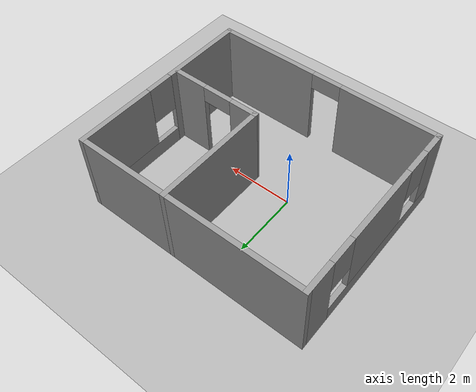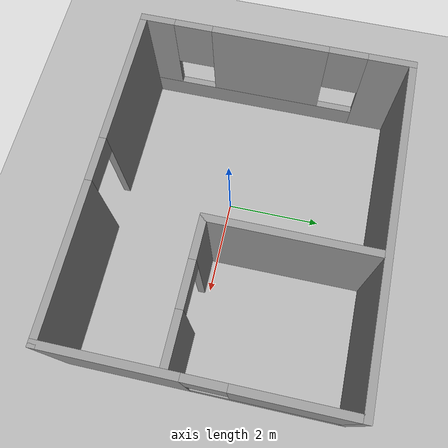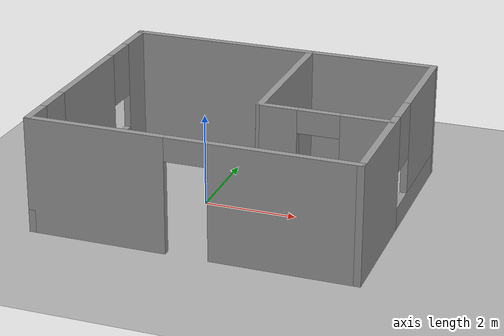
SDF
<sdf version="1.9">
 <world name="default">
  <gravity>0 0 -9.8</gravity>
  <magnetic_field>6e-06 2.3e-05 -4.2e-05</magnetic_field>
  <atmosphere type="adiabatic"/>
  <physics type="ode">
   <max_step_size>0.001</max_step_size>
   <real_time_factor>1</real_time_factor>
   <real_time_update_rate>1000</real_time_update_rate>
  </physics>
  <scene><ambient>0.4 0.4 0.4 1</ambient><background>0.7 0.7 0.7 1</background><shadows>true</shadows></scene>
  <model name="studio">
   <pose>0.625 0.380103 0 0 -0 0</pose>
   <link name="Wall_0">
    <pose>0 -2.8001 0 0 -0 0</pose>
    <visual name="Wall_0_Visual_0">
     <pose>-2.00541 0 1.25 0 -0 0</pose>
     <geometry><box><size>2.98917 0.15 2.5</size></box></geometry>
     <material>
      <script><uri>file://media/materials/scripts/gazebo.material</uri><name>Gazebo/Grey</name></script>
      <ambient>1 1 1 1</ambient>
     </material>
     <meta><layer>0</layer></meta>
    </visual>
    <collision name="Wall_0_Collision_0">
     <geometry><box><size>2.98917 0.15 2.5</size></box></geometry>
     <pose>-2.00541 0 1.25 0 -0 0</pose>
    </collision>
    <visual name="Wall_0_Visual_1">
     <pose>1.94459 0 1.25 0 -0 0</pose>
     <geometry><box><size>3.11083 0.15 2.5</size></box></geometry>
     <material>
      <script><uri>file://media/materials/scripts/gazebo.material</uri><name>Gazebo/Grey</name></script>
      <ambient>1 1 1 1</ambient>
     </material>
     <meta><layer>0</layer></meta>
    </visual>
    <collision name="Wall_0_Collision_1">
     <geometry><box><size>3.11083 0.15 2.5</size></box></geometry>
     <pose>1.94459 0 1.25 0 -0 0</pose>
    </collision>
    <visual name="Wall_0_Visual_2">
     <pose>-0.060828 0 2.25 0 -0 0</pose>
     <geometry><box><size>0.9 0.15 0.5</size></box></geometry>
     <material>
      <script><uri>file://media/materials/scripts/gazebo.material</uri><name>Gazebo/Grey</name></script>
      <ambient>1 1 1 1</ambient>
     </material>
     <meta><layer>0</layer></meta>
    </visual>
    <collision name="Wall_0_Collision_2">
     <geometry><box><size>0.9 0.15 0.5</size></box></geometry>
     <pose>-0.060828 0 2.25 0 -0 0</pose>
    </collision>
    <inertial>
     <mass>1</mass>
     <inertia><ixx>1</ixx><ixy>0</ixy><ixz>0</ixz><iyy>1</iyy><iyz>0</iyz><izz>1</izz></inertia>
    </inertial>
   </link>
   <link name="Wall_1">
    <pose>3.425 -0.000103 0 0 -0 1.5708</pose>
    <visual name="Wall_1_Visual_0">
     <pose>-1.57616 0 1.25 0 -0 0</pose>
     <geometry><box><size>2.59769 0.15 2.5</size></box></geometry>
     <material>
      <script><uri>file://media/materials/scripts/gazebo.material</uri><name>Gazebo/Grey</name></script>
      <ambient>1 1 1 1</ambient>
     </material>
     <meta><layer>0</layer></meta>
    </visual>
    <collision name="Wall_1_Collision_0">
     <geometry><box><size>2.59769 0.15 2.5</size></box></geometry>
     <pose>-1.57616 0 1.25 0 -0 0</pose>
    </collision>
    <visual name="Wall_1_Visual_1">
     <pose>1.29884 0 0.25 0 -0 0</pose>
     <geometry><box><size>3.15231 0.15 0.5</size></box></geometry>
     <material>
      <script><uri>file://media/materials/scripts/gazebo.material</uri><name>Gazebo/Grey</name></script>
      <ambient>1 1 1 1</ambient>
     </material>
     <meta><layer>0</layer></meta>
    </visual>
    <collision name="Wall_1_Collision_1">
     <geometry><box><size>3.15231 0.15 0.5</size></box></geometry>
     <pose>1.29884 0 0.25 0 -0 0</pose>
    </collision>
    <visual name="Wall_1_Visual_2">
     <pose>1.69884 0 1.5 0 -0 0</pose>
     <geometry><box><size>2.35231 0.15 2</size></box></geometry>
     <material>
      <script><uri>file://media/materials/scripts/gazebo.material</uri><name>Gazebo/Grey</name></script>
      <ambient>1 1 1 1</ambient>
     </material>
     <meta><layer>0</layer></meta>
    </visual>
    <collision name="Wall_1_Collision_2">
     <geometry><box><size>2.35231 0.15 2</size></box></geometry>
     <pose>1.69884 0 1.5 0 -0 0</pose>
    </collision>
    <visual name="Wall_1_Visual_3">
     <pose>0.122688 0 1.9 0 -0 0</pose>
     <geometry><box><size>0.8 0.15 1.2</size></box></geometry>
     <material>
      <script><uri>file://media/materials/scripts/gazebo.material</uri><name>Gazebo/Grey</name></script>
      <ambient>1 1 1 1</ambient>
     </material>
     <meta><layer>0</layer></meta>
    </visual>
    <collision name="Wall_1_Collision_3">
     <geometry><box><size>0.8 0.15 1.2</size></box></geometry>
     <pose>0.122688 0 1.9 0 -0 0</pose>
    </collision>
    <inertial>
     <mass>1</mass>
     <inertia><ixx>1</ixx><ixy>0</ixy><ixz>0</ixz><iyy>1</iyy><iyz>0</iyz><izz>1</izz></inertia>
    </inertial>
   </link>
   <link name="Wall_2">
    <collision name="Wall_2_Collision">
     <geometry><box><size>7 0.15 2.5</size></box></geometry>
     <pose>0 0 1.25 0 -0 0</pose>
    </collision>
    <visual name="Wall_2_Visual">
     <pose>0 0 1.25 0 -0 0</pose>
     <geometry><box><size>7 0.15 2.5</size></box></geometry>
     <material>
      <script><uri>file://media/materials/scripts/gazebo.material</uri><name>Gazebo/Grey</name></script>
      <ambient>1 1 1 1</ambient>
     </material>
     <meta><layer>0</layer></meta>
    </visual>
    <pose>0 2.7999 0 0 -0 3.14159</pose>
    <inertial>
     <mass>1</mass>
     <inertia><ixx>1</ixx><ixy>0</ixy><ixz>0</ixz><iyy>1</iyy><iyz>0</iyz><izz>1</izz></inertia>
    </inertial>
   </link>
   <link name="Wall_3">
    <pose>-3.425 -0.000103 0 0 0 -1.5708</pose>
    <visual name="Wall_3_Visual_0">
     <pose>-2.38367 0 1.25 0 -0 0</pose>
     <geometry><box><size>0.982653 0.15 2.5</size></box></geometry>
     <material>
      <script><uri>file://media/materials/scripts/gazebo.material</uri><name>Gazebo/Grey</name></script>
      <ambient>1 1 1 1</ambient>
     </material>
     <meta><layer>0</layer></meta>
    </visual>
    <collision name="Wall_3_Collision_0">
     <geometry><box><size>0.982653 0.15 2.5</size></box></geometry>
     <pose>-2.38367 0 1.25 0 -0 0</pose>
    </collision>
    <visual name="Wall_3_Visual_1">
     <pose>0.491327 0 0.25 0 -0 0</pose>
     <geometry><box><size>4.76735 0.15 0.5</size></box></geometry>
     <material>
      <script><uri>file://media/materials/scripts/gazebo.material</uri><name>Gazebo/Grey</name></script>
      <ambient>1 1 1 1</ambient>
     </material>
     <meta><layer>0</layer></meta>
    </visual>
    <collision name="Wall_3_Collision_1">
     <geometry><box><size>4.76735 0.15 0.5</size></box></geometry>
     <pose>0.491327 0 0.25 0 -0 0</pose>
    </collision>
    <visual name="Wall_3_Visual_2">
     <pose>0.126341 0 1.5 0 -0 0</pose>
     <geometry><box><size>2.43737 0.15 2</size></box></geometry>
     <material>
      <script><uri>file://media/materials/scripts/gazebo.material</uri><name>Gazebo/Grey</name></script>
      <ambient>1 1 1 1</ambient>
     </material>
     <meta><layer>0</layer></meta>
    </visual>
    <collision name="Wall_3_Collision_2">
     <geometry><box><size>2.43737 0.15 2</size></box></geometry>
     <pose>0.126341 0 1.5 0 -0 0</pose>
    </collision>
    <visual name="Wall_3_Visual_3">
     <pose>2.51001 0 1.5 0 -0 0</pose>
     <geometry><box><size>0.729972 0.15 2</size></box></geometry>
     <material>
      <script><uri>file://media/materials/scripts/gazebo.material</uri><name>Gazebo/Grey</name></script>
      <ambient>1 1 1 1</ambient>
     </material>
     <meta><layer>0</layer></meta>
    </visual>
    <collision name="Wall_3_Collision_3">
     <geometry><box><size>0.729972 0.15 2</size></box></geometry>
     <pose>2.51001 0 1.5 0 -0 0</pose>
    </collision>
    <visual name="Wall_3_Visual_4">
     <pose>-1.49235 0 1.9 0 -0 0</pose>
     <geometry><box><size>0.8 0.15 1.2</size></box></geometry>
     <material>
      <script><uri>file://media/materials/scripts/gazebo.material</uri><name>Gazebo/Grey</name></script>
      <ambient>1 1 1 1</ambient>
     </material>
     <meta><layer>0</layer></meta>
    </visual>
    <collision name="Wall_3_Collision_4">
     <geometry><box><size>0.8 0.15 1.2</size></box></geometry>
     <pose>-1.49235 0 1.9 0 -0 0</pose>
    </collision>
    <visual name="Wall_3_Visual_5">
     <pose>1.74503 0 1.9 0 -0 0</pose>
     <geometry><box><size>0.8 0.15 1.2</size></box></geometry>
     <material>
      <script><uri>file://media/materials/scripts/gazebo.material</uri><name>Gazebo/Grey</name></script>
      <ambient>1 1 1 1</ambient>
     </material>
     <meta><layer>0</layer></meta>
    </visual>
    <collision name="Wall_3_Collision_5">
     <geometry><box><size>0.8 0.15 1.2</size></box></geometry>
     <pose>1.74503 0 1.9 0 -0 0</pose>
    </collision>
    <inertial>
     <mass>1</mass>
     <inertia><ixx>1</ixx><ixy>0</ixy><ixz>0</ixz><iyy>1</iyy><iyz>0</iyz><izz>1</izz></inertia>
    </inertial>
   </link>
   <link name="Wall_5">
    <collision name="Wall_5_Collision">
     <geometry><box><size>3.5 0.15 2.5</size></box></geometry>
     <pose>0 0 1.25 0 -0 0</pose>
    </collision>
    <visual name="Wall_5_Visual">
     <pose>0 0 1.25 0 -0 0</pose>
     <geometry><box><size>3.5 0.15 2.5</size></box></geometry>
     <material>
      <script><uri>file://media/materials/scripts/gazebo.material</uri><name>Gazebo/Grey</name></script>
      <ambient>1 1 1 1</ambient>
     </material>
     <meta><layer>0</layer></meta>
    </visual>
    <pose>0.648893 1.1251 0 0 0 -1.5708</pose>
    <inertial>
     <mass>1</mass>
     <inertia><ixx>1</ixx><ixy>0</ixy><ixz>0</ixz><iyy>1</iyy><iyz>0</iyz><izz>1</izz></inertia>
    </inertial>
   </link>
   <link name="Wall_6">
    <pose>2.02482 -0.554974 0 0 0 -0.00369</pose>
    <visual name="Wall_6_Visual_0">
     <pose>-1.01096 0 1.25 0 -0 0</pose>
     <geometry><box><size>0.879958 0.15 2.5</size></box></geometry>
     <material>
      <script><uri>file://media/materials/scripts/gazebo.material</uri><name>Gazebo/Grey</name></script>
      <ambient>1 1 1 1</ambient>
     </material>
     <meta><layer>0</layer></meta>
    </visual>
    <collision name="Wall_6_Collision_0">
     <geometry><box><size>0.879958 0.15 2.5</size></box></geometry>
     <pose>-1.01096 0 1.25 0 -0 0</pose>
    </collision>
    <visual name="Wall_6_Visual_1">
     <pose>0.889979 0 1.25 0 -0 0</pose>
     <geometry><box><size>1.12191 0.15 2.5</size></box></geometry>
     <material>
      <script><uri>file://media/materials/scripts/gazebo.material</uri><name>Gazebo/Grey</name></script>
      <ambient>1 1 1 1</ambient>
     </material>
     <meta><layer>0</layer></meta>
    </visual>
    <collision name="Wall_6_Collision_1">
     <geometry><box><size>1.12191 0.15 2.5</size></box></geometry>
     <pose>0.889979 0 1.25 0 -0 0</pose>
    </collision>
    <visual name="Wall_6_Visual_2">
     <pose>-0.120978 0 2.25 0 -0 0</pose>
     <geometry><box><size>0.9 0.15 0.5</size></box></geometry>
     <material>
      <script><uri>file://media/materials/scripts/gazebo.material</uri><name>Gazebo/Grey</name></script>
      <ambient>1 1 1 1</ambient>
     </material>
     <meta><layer>0</layer></meta>
    </visual>
    <collision name="Wall_6_Collision_2">
     <geometry><box><size>0.9 0.15 0.5</size></box></geometry>
     <pose>-0.120978 0 2.25 0 -0 0</pose>
    </collision>
    <inertial>
     <mass>1</mass>
     <inertia><ixx>1</ixx><ixy>0</ixy><ixz>0</ixz><iyy>1</iyy><iyz>0</iyz><izz>1</izz></inertia>
    </inertial>
   </link>
   <static>true</static>
  </model>
  <model name="ground_plane">
   <static>true</static>
   <link name="link">
    <collision name="collision">
     <geometry><plane><normal>0 0 1</normal><size>100 100</size></plane></geometry>
     <surface><friction><ode><mu>100</mu><mu2>50</mu2></ode></friction></surface>
    </collision>
    <visual name="visual">
     <cast_shadows>false</cast_shadows>
     <geometry><plane><normal>0 0 1</normal><size>100 100</size></plane></geometry>
     <material>
      <ambient>0.3 0.3 0.3 1</ambient>
      <diffuse>0.7 0.7 0.7 1</diffuse>
      <specular>0.01 0.01 0.01 1</specular>
     </material>
    </visual>
    <inertial>
     <mass>1</mass>
     <inertia><ixx>1</ixx><ixy>0</ixy><ixz>0</ixz><iyy>1</iyy><iyz>0</iyz><izz>1</izz></inertia>
    </inertial>
   </link>
   <pose>-3.44742 0.853715 0 0 -0 0</pose>
  </model>
  <light name="sun" type="directional">
   <pose>5.8906 -5.97551 10 0 -0 0</pose>
   <intensity>1</intensity>
   <direction>-0.5 0.1 -0.9</direction>
   <diffuse>0.8 0.8 0.8 1</diffuse>
   <specular>0.2 0.2 0.2 1</specular>
   <attenuation>
    <range>1000</range>
    <linear>0.01</linear>
    <constant>0.90000000000000002</constant>
    <quadratic>0.001</quadratic>
   </attenuation>
   <spot><inner_angle>0</inner_angle><outer_angle>0</outer_angle><falloff>0</falloff></spot>
  </light>
 </world>
</sdf>
